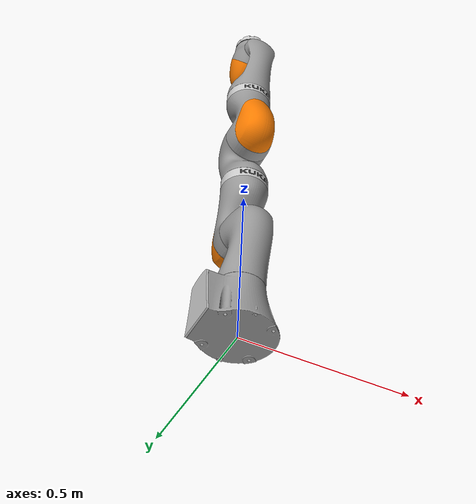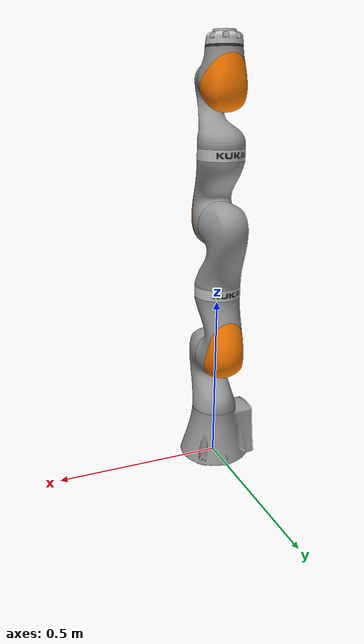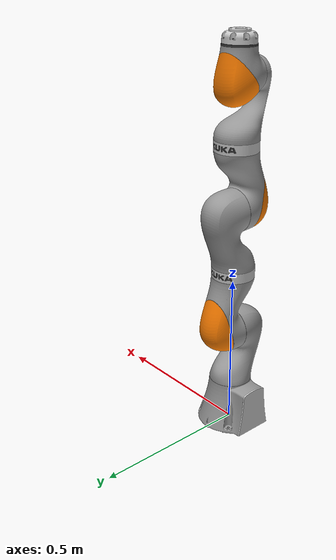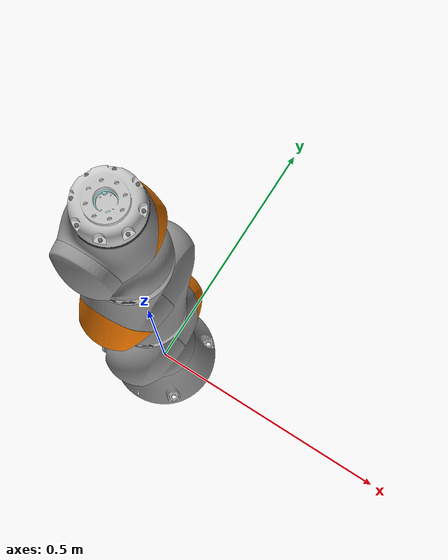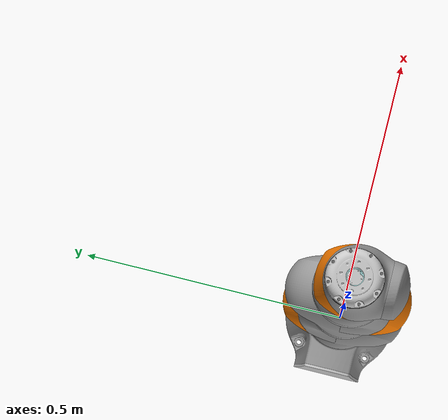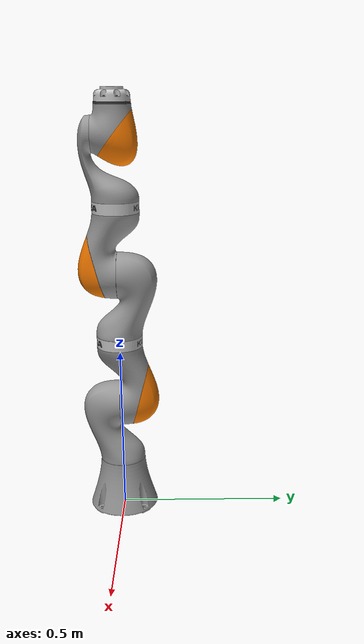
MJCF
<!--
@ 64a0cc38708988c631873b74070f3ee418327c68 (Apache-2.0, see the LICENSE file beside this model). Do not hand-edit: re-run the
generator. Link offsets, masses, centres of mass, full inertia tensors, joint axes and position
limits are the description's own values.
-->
<mujoco model="lbr_iiwa7">
  <compiler angle="radian" meshdir="meshes" autolimits="true"/>

  <default>
    <default class="lbr_iiwa7">
      <default class="shoulder">
        <joint damping="20" armature="0.5"/>
        <position kp="10000" kv="300"/>
      </default>
      <default class="elbow">
        <joint damping="10" armature="0.3"/>
        <position kp="6000" kv="150"/>
      </default>
      <default class="wrist">
        <joint damping="5" armature="0.2"/>
        <position kp="3000" kv="60"/>
      </default>
      <default class="hand">
        <joint damping="2" armature="0.1"/>
        <position kp="2000" kv="30"/>
      </default>
      <default class="visual">
        <geom type="mesh" contype="0" conaffinity="0" group="2" material="iiwa_default"/>
      </default>
      <default class="collision">
        <geom type="mesh" group="3" rgba="0.6 0.1 0.1 0.35"/>
      </default>
      <site size="0.005" rgba="0.5 0.5 0.5 0.3" group="4"/>
    </default>
  </default>

  <asset>
    <material name="iiwa_default" rgba="0.75 0.75 0.75 1"/>
    <material name="mat_link_0_visual_0" rgba="0.6 0.6 0.6 1"/>
    <material name="mat_link_0_visual_1" rgba="0.8 0.8 0.8 1"/>
    <material name="mat_link_1_visual_0" rgba="0.6 0.6 0.6 1"/>
    <material name="mat_link_2_visual_0" rgba="0.6 0.6 0.6 1"/>
    <material name="mat_link_2_visual_1" rgba="1 0.498 0 1"/>
    <material name="mat_link_2_visual_2" rgba="0.8 0.8 0.8 1"/>
    <material name="mat_link_2_visual_3" rgba="0.2 0.2 0.2 1"/>
    <material name="mat_link_3_visual_0" rgba="0.6 0.6 0.6 1"/>
    <material name="mat_link_4_visual_0" rgba="0.6 0.6 0.6 1"/>
    <material name="mat_link_4_visual_1" rgba="1 0.498 0 1"/>
    <material name="mat_link_4_visual_2" rgba="0.8 0.8 0.8 1"/>
    <material name="mat_link_4_visual_3" rgba="0.2 0.2 0.2 1"/>
    <material name="mat_link_5_visual_0" rgba="0.6 0.6 0.6 1"/>
    <material name="mat_link_6_visual_0" rgba="0.6 0.6 0.6 1"/>
    <material name="mat_link_6_visual_1" rgba="1 0.498 0 1"/>
    <material name="mat_link_6_visual_2" rgba="0.2 0.2 0.2 1"/>
    <material name="mat_link_7_visual_0" rgba="0.8 0.8 0.8 1"/>
    <material name="mat_link_7_visual_1" rgba="0.4 0.4 0.4 1"/>
    <material name="mat_link_7_visual_2" rgba="0.6 0.8 0.8 1"/>
    <mesh file="link_0_visual_0.obj"/>
    <mesh file="link_0_visual_1.obj"/>
    <mesh file="link_1_visual_0.obj"/>
    <mesh file="link_2_visual_0.obj"/>
    <mesh file="link_2_visual_1.obj"/>
    <mesh file="link_2_visual_2.obj"/>
    <mesh file="link_2_visual_3.obj"/>
    <mesh file="link_3_visual_0.obj"/>
    <mesh file="link_4_visual_0.obj"/>
    <mesh file="link_4_visual_1.obj"/>
    <mesh file="link_4_visual_2.obj"/>
    <mesh file="link_4_visual_3.obj"/>
    <mesh file="link_5_visual_0.obj"/>
    <mesh file="link_6_visual_0.obj"/>
    <mesh file="link_6_visual_1.obj"/>
    <mesh file="link_6_visual_2.obj"/>
    <mesh file="link_7_visual_0.obj"/>
    <mesh file="link_7_visual_1.obj"/>
    <mesh file="link_7_visual_2.obj"/>
    <mesh file="link_0_collision.stl"/>
    <mesh file="link_1_collision.stl"/>
    <mesh file="link_2_collision.stl"/>
    <mesh file="link_3_collision.stl"/>
    <mesh file="link_4_collision.stl"/>
    <mesh file="link_5_collision.stl"/>
    <mesh file="link_6_collision.stl"/>
    <mesh file="link_7_collision.stl"/>
  </asset>

  <worldbody>
    <body name="link_0" childclass="lbr_iiwa7">
      <inertial pos="-0.012857 0.0 0.069964" mass="4.855658" fullinertia="0.017839 0.022294 0.021334 0.0 0.000781 0.0"/>
      <geom class="visual" mesh="link_0_visual_0" pos="0 0 0" material="mat_link_0_visual_0"/>
      <geom class="visual" mesh="link_0_visual_1" pos="0 0 0" material="mat_link_0_visual_1"/>
      <geom class="collision" mesh="link_0_collision" pos="0 0 0"/>
      <body name="link_1" pos="0 0 0.1475">
        <inertial pos="0.0 -0.034819 0.123299" mass="3.394011" fullinertia="0.021383 0.020403 0.007563 0.0 0.0 0.003797"/>
        <joint name="A1" class="shoulder" axis="0 0 1" range="-2.96706 2.96706"/>
        <geom class="visual" mesh="link_1_visual_0" pos="0 0 -0.1475" material="mat_link_1_visual_0"/>
        <geom class="collision" mesh="link_1_collision" pos="0 0 -0.1475"/>
        <body name="link_2" pos="0 -0.0105 0.1925">
          <inertial pos="0.0 0.039793 0.086944" mass="4.031991" fullinertia="0.031697 0.03008 0.009666 0.0 0.0 0.005889"/>
          <joint name="A2" class="shoulder" axis="0 1 0" range="-2.0944 2.0944"/>
          <geom class="visual" mesh="link_2_visual_0" pos="0 0.0105 -0.34" material="mat_link_2_visual_0"/>
          <geom class="visual" mesh="link_2_visual_1" pos="0 0.0105 -0.34" material="mat_link_2_visual_1"/>
          <geom class="visual" mesh="link_2_visual_2" pos="0 0.0105 -0.34" material="mat_link_2_visual_2"/>
          <geom class="visual" mesh="link_2_visual_3" pos="0 0.0105 -0.34" material="mat_link_2_visual_3"/>
          <geom class="collision" mesh="link_2_collision" pos="0 0.0105 -0.34"/>
          <body name="link_3" pos="0 0.0105 0.2075">
            <inertial pos="0.0 0.034819 0.123299" mass="3.394011" fullinertia="0.021383 0.020403 0.007563 0.0 0.0 -0.003797"/>
            <joint name="A3" class="elbow" axis="0 0 1" range="-2.96706 2.96706"/>
            <geom class="visual" mesh="link_3_visual_0" pos="0 0 -0.5475" material="mat_link_3_visual_0"/>
            <geom class="collision" mesh="link_3_collision" pos="0 0 -0.5475"/>
            <body name="link_4" pos="0 0.0105 0.1925">
              <inertial pos="0.0 -0.039793 0.086944" mass="4.031989" fullinertia="0.031695 0.030079 0.009665 0.0 0.0 -0.005889"/>
              <joint name="A4" class="elbow" axis="0 -1 0" range="-2.0944 2.0944"/>
              <geom class="visual" mesh="link_4_visual_0" pos="0 -0.0105 -0.74" material="mat_link_4_visual_0"/>
              <geom class="visual" mesh="link_4_visual_1" pos="0 -0.0105 -0.74" material="mat_link_4_visual_1"/>
              <geom class="visual" mesh="link_4_visual_2" pos="0 -0.0105 -0.74" material="mat_link_4_visual_2"/>
              <geom class="visual" mesh="link_4_visual_3" pos="0 -0.0105 -0.74" material="mat_link_4_visual_3"/>
              <geom class="collision" mesh="link_4_collision" pos="0 -0.0105 -0.74"/>
              <body name="link_5" pos="0 -0.0105 0.2075">
                <inertial pos="0.0 -0.029824 0.076267" mass="1.529239" fullinertia="0.008485 0.007136 0.003848 0.0 0.0 0.002806"/>
                <joint name="A5" class="wrist" axis="0 0 1" range="-2.96706 2.96706"/>
                <geom class="visual" mesh="link_5_visual_0" pos="0 0 -0.9475" material="mat_link_5_visual_0"/>
                <geom class="collision" mesh="link_5_collision" pos="0 0 -0.9475"/>
                <body name="link_6" pos="0 -0.0707 0.1925">
                  <inertial pos="0.0 0.07102 0.00495" mass="2.403626" fullinertia="0.007067 0.006804 0.004629 0.0 0.0 0.000311"/>
                  <joint name="A6" class="hand" axis="0 1 0" range="-2.0944 2.0944"/>
                  <geom class="visual" mesh="link_6_visual_0" pos="0 0.0707 -1.14" material="mat_link_6_visual_0"/>
                  <geom class="visual" mesh="link_6_visual_1" pos="0 0.0707 -1.14" material="mat_link_6_visual_1"/>
                  <geom class="visual" mesh="link_6_visual_2" pos="0 0.0707 -1.14" material="mat_link_6_visual_2"/>
                  <geom class="collision" mesh="link_6_collision" pos="0 0.0707 -1.14"/>
                  <body name="link_7" pos="0 0.0707 0.091">
                    <inertial pos="3.0000e-06 -2.0000e-06 1.3782e-02" mass="0.259474" fullinertia="0.000171 0.000171 0.000299 0.0 0.0 0.0"/>
                    <joint name="A7" class="hand" axis="0 0 1" range="-3.05433 3.05433"/>
                    <geom class="visual" mesh="link_7_visual_0" pos="0 0 -1.231" material="mat_link_7_visual_0"/>
                    <geom class="visual" mesh="link_7_visual_1" pos="0 0 -1.231" material="mat_link_7_visual_1"/>
                    <geom class="visual" mesh="link_7_visual_2" pos="0 0 -1.231" material="mat_link_7_visual_2"/>
                    <geom class="collision" mesh="link_7_collision" pos="0 0 -1.231"/>
                    <site name="attachment_site" pos="0 0 0.035"/>
                  </body>
                </body>
              </body>
            </body>
          </body>
        </body>
      </body>
    </body>
  </worldbody>

  <contact>
    <exclude body1="link_0" body2="link_1"/>
    <exclude body1="link_1" body2="link_2"/>
    <exclude body1="link_2" body2="link_3"/>
    <exclude body1="link_3" body2="link_4"/>
    <exclude body1="link_4" body2="link_5"/>
    <exclude body1="link_5" body2="link_6"/>
    <exclude body1="link_6" body2="link_7"/>
    <exclude body1="link_5" body2="link_7"/>
  </contact>

  <actuator>
    <position class="shoulder" name="A1" joint="A1" ctrlrange="-2.96706 2.96706" forcerange="-176 176"/>
    <position class="shoulder" name="A2" joint="A2" ctrlrange="-2.0944 2.0944" forcerange="-176 176"/>
    <position class="elbow" name="A3" joint="A3" ctrlrange="-2.96706 2.96706" forcerange="-110 110"/>
    <position class="elbow" name="A4" joint="A4" ctrlrange="-2.0944 2.0944" forcerange="-110 110"/>
    <position class="wrist" name="A5" joint="A5" ctrlrange="-2.96706 2.96706" forcerange="-110 110"/>
    <position class="hand" name="A6" joint="A6" ctrlrange="-2.0944 2.0944" forcerange="-40 40"/>
    <position class="hand" name="A7" joint="A7" ctrlrange="-3.05433 3.05433" forcerange="-40 40"/>
  </actuator>

  <keyframe>
    <!-- Elbow bent over the workspace: A2 30 deg forward, A4 -60 deg, A6 60 deg, which keeps the
         flange in front of and above the base, clear of the joint limits. -->
    <key name="home" qpos="0 0.523599 0 -1.0472 0 1.0472 0" ctrl="0 0.523599 0 -1.0472 0 1.0472 0"/>
  </keyframe>
</mujoco>
